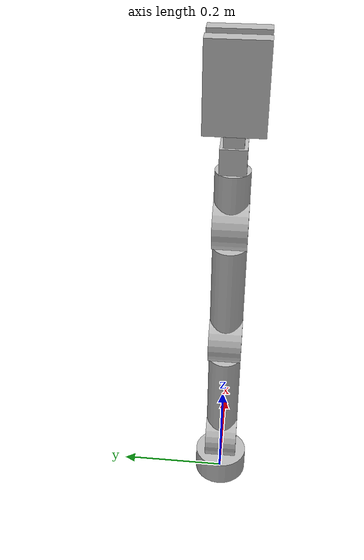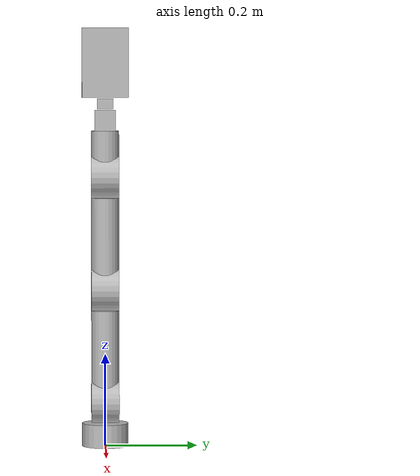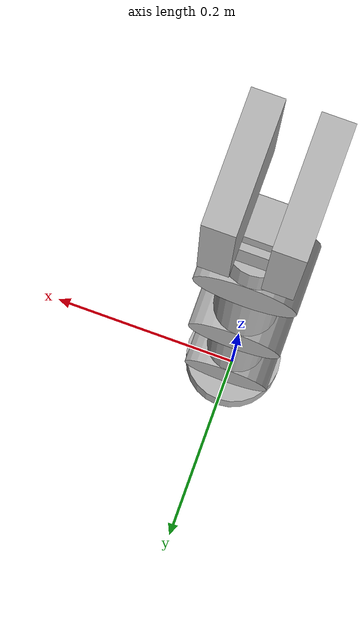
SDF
<sdf version='1.6'>
  <model name='poke_arm_main'>
    <link name='poke_base_link'>
      <pose frame=''>0 0 0 0 -0 0</pose>
      <inertial>
        <pose frame=''>0 0 0.025 0 -0 0</pose>
        <mass>0.01</mass>
        <inertia>
          <ixx>0.0001</ixx>
          <ixy>0</ixy>
          <ixz>0</ixz>
          <iyy>0.0001</iyy>
          <iyz>0</iyz>
          <izz>0.0001</izz>
        </inertia>
      </inertial>
      <collision name='poke_base_link_fixed_joint_lump__baseMount_link_collision'>
        <pose frame=''>0 0 0.025 0 -0 0</pose>
        <geometry>
          <cylinder>
            <length>0.05</length>
            <radius>0.05</radius>
          </cylinder>
        </geometry>
      </collision>
      <visual name='poke_base_link_fixed_joint_lump__baseMount_link_visual'>
        <pose frame=''>0 0 0.025 0 -0 0</pose>
        <geometry>
          <cylinder>
            <length>0.05</length>
            <radius>0.05</radius>
          </cylinder>
        </geometry>
      </visual>
    </link>
    <joint name='poke_base_joint' type='fixed'>
      <child>poke_base_link</child>
      <parent>world</parent>
    </joint>
    <link name='p0_link'>
      <pose frame=''>0 0 0.095 0 -0 0</pose>
      <inertial>
        <pose frame=''>0 0 0.1 0 -0 0</pose>
        <mass>0.01</mass>
        <inertia>
          <ixx>0.0001</ixx>
          <ixy>0</ixy>
          <ixz>0</ixz>
          <iyy>0.0001</iyy>
          <iyz>0</iyz>
          <izz>0.0001</izz>
        </inertia>
      </inertial>
      <collision name='p0_link_fixed_joint_lump__p0_joint_c_collision'>
        <pose frame=''>0 0 0 1.57079 -0 0</pose>
        <geometry>
          <cylinder>
            <length>0.06</length>
            <radius>0.045</radius>
          </cylinder>
        </geometry>
      </collision>
      <collision name='p0_link_fixed_joint_lump__p0_segmentL_c_collision_1'>
        <pose frame=''>0 0 0.1 0 -0 0</pose>
        <geometry>
          <cylinder>
            <length>0.2</length>
            <radius>0.03</radius>
          </cylinder>
        </geometry>
      </collision>
      <visual name='p0_link_fixed_joint_lump__p0_joint_v_visual'>
        <pose frame=''>0 0 0 1.57079 -0 0</pose>
        <geometry>
          <cylinder>
            <length>0.06</length>
            <radius>0.045</radius>
          </cylinder>
        </geometry>
      </visual>
      <visual name='p0_link_fixed_joint_lump__p0_segmentL_v_visual_1'>
        <pose frame=''>0 0 0.1 0 -0 0</pose>
        <geometry>
          <cylinder>
            <length>0.2</length>
            <radius>0.03</radius>
          </cylinder>
        </geometry>
      </visual>
    </link>
    <joint name='p0_joint' type='revolute'>
      <child>p0_link</child>
      <parent>poke_base_link</parent>
      <axis>
        <xyz>0 1 0</xyz>
        <limit>
          <lower>-3.14159</lower>
          <upper>3.14159</upper>
          <effort>100</effort>
          <velocity>5</velocity>
        </limit>
        <dynamics>
          <spring_reference>0</spring_reference>
          <spring_stiffness>0</spring_stiffness>
        </dynamics>
        <use_parent_model_frame>1</use_parent_model_frame>
      </axis>
    </joint>
    <link name='p1_link'>
      <pose frame=''>0 0 0.34 0 -0 0</pose>
      <inertial>
        <pose frame=''>0 0 0.1 0 -0 0</pose>
        <mass>0.01</mass>
        <inertia>
          <ixx>0.0001</ixx>
          <ixy>0</ixy>
          <ixz>0</ixz>
          <iyy>0.0001</iyy>
          <iyz>0</iyz>
          <izz>0.0001</izz>
        </inertia>
      </inertial>
      <collision name='p1_link_fixed_joint_lump__p1_joint_c_collision'>
        <pose frame=''>0 0 0 1.57079 -0 0</pose>
        <geometry>
          <cylinder>
            <length>0.06</length>
            <radius>0.045</radius>
          </cylinder>
        </geometry>
      </collision>
      <collision name='p1_link_fixed_joint_lump__p1_segmentL_c_collision_1'>
        <pose frame=''>0 0 0.1 0 -0 0</pose>
        <geometry>
          <cylinder>
            <length>0.2</length>
            <radius>0.03</radius>
          </cylinder>
        </geometry>
      </collision>
      <visual name='p1_link_fixed_joint_lump__p1_joint_v_visual'>
        <pose frame=''>0 0 0 1.57079 -0 0</pose>
        <geometry>
          <cylinder>
            <length>0.06</length>
            <radius>0.045</radius>
          </cylinder>
        </geometry>
      </visual>
      <visual name='p1_link_fixed_joint_lump__p1_segmentL_v_visual_1'>
        <pose frame=''>0 0 0.1 0 -0 0</pose>
        <geometry>
          <cylinder>
            <length>0.2</length>
            <radius>0.03</radius>
          </cylinder>
        </geometry>
      </visual>
    </link>
    <joint name='p1_joint' type='revolute'>
      <child>p1_link</child>
      <parent>p0_link</parent>
      <axis>
        <xyz>0 1 0</xyz>
        <limit>
          <lower>-3.14159</lower>
          <upper>3.14159</upper>
          <effort>100</effort>
          <velocity>5</velocity>
        </limit>
        <dynamics>
          <spring_reference>0</spring_reference>
          <spring_stiffness>0</spring_stiffness>
        </dynamics>
        <use_parent_model_frame>1</use_parent_model_frame>
      </axis>
    </joint>
    <link name='p2_link'>
      <pose frame=''>0 0 0.585 0 -0 0</pose>
      <inertial>
        <pose frame=''>0 0 0.05 0 -0 0</pose>
        <mass>0.01</mass>
        <inertia>
          <ixx>0.0001</ixx>
          <ixy>0</ixy>
          <ixz>0</ixz>
          <iyy>0.0001</iyy>
          <iyz>0</iyz>
          <izz>0.0001</izz>
        </inertia>
      </inertial>
      <collision name='p2_link_fixed_joint_lump__p2_joint_c_collision'>
        <pose frame=''>0 0 0 1.57079 -0 0</pose>
        <geometry>
          <cylinder>
            <length>0.06</length>
            <radius>0.045</radius>
          </cylinder>
        </geometry>
      </collision>
      <collision name='p2_link_fixed_joint_lump__p2_segmentS_c_collision_1'>
        <pose frame=''>0 0 0.05 0 -0 0</pose>
        <geometry>
          <cylinder>
            <length>0.1</length>
            <radius>0.03</radius>
          </cylinder>
        </geometry>
      </collision>
      <visual name='p2_link_fixed_joint_lump__p2_joint_v_visual'>
        <pose frame=''>0 0 0 1.57079 -0 0</pose>
        <geometry>
          <cylinder>
            <length>0.06</length>
            <radius>0.045</radius>
          </cylinder>
        </geometry>
      </visual>
      <visual name='p2_link_fixed_joint_lump__p2_segmentS_v_visual_1'>
        <pose frame=''>0 0 0.05 0 -0 0</pose>
        <geometry>
          <cylinder>
            <length>0.1</length>
            <radius>0.03</radius>
          </cylinder>
        </geometry>
      </visual>
    </link>
    <joint name='p2_joint' type='revolute'>
      <child>p2_link</child>
      <parent>p1_link</parent>
      <axis>
        <xyz>0 1 0</xyz>
        <limit>
          <lower>-3.14159</lower>
          <upper>3.14159</upper>
          <effort>100</effort>
          <velocity>5</velocity>
        </limit>
        <dynamics>
          <spring_reference>0</spring_reference>
          <spring_stiffness>0</spring_stiffness>
        </dynamics>
        <use_parent_model_frame>1</use_parent_model_frame>
      </axis>
    </joint>
    <link name='p3_link'>
      <pose frame=''>0 0 0.7075 0 -0 0</pose>
      <inertial>
        <pose frame=''>0 0 0.018 0 -0 0</pose>
        <mass>0.02</mass>
        <inertia>
          <ixx>0.00010748</ixx>
          <ixy>0</ixy>
          <ixz>0</ixz>
          <iyy>0.00010748</iyy>
          <iyz>0</iyz>
          <izz>0.000101</izz>
        </inertia>
      </inertial>
      <collision name='p3_link_fixed_joint_lump__p3_cSeg_c_collision'>
        <pose frame=''>0 0 0 0 -0 0</pose>
        <geometry>
          <box>
            <size>0.045 0.045 0.045</size>
          </box>
        </geometry>
      </collision>
      <collision name='p3_link_fixed_joint_lump__gripper_frame_cp_collision_1'>
        <pose frame=''>0 0 0.036 3.14159 -1.57079 3.14159</pose>
        <geometry>
          <box>
            <size>0.0225 0.03375 0.045</size>
          </box>
        </geometry>
      </collision>
      <visual name='p3_link_fixed_joint_lump__p3_cSeg_v_visual'>
        <pose frame=''>0 0 0 0 -0 0</pose>
        <geometry>
          <box>
            <size>0.045 0.045 0.045</size>
          </box>
        </geometry>
      </visual>
      <visual name='p3_link_fixed_joint_lump__gripper_frame_cp_visual_1'>
        <pose frame=''>0 0 0.036 3.14159 -1.57079 3.14159</pose>
        <geometry>
          <box>
            <size>0.0225 0.03375 0.045</size>
          </box>
        </geometry>
      </visual>
    </link>
    <joint name='p3_joint' type='revolute'>
      <child>p3_link</child>
      <parent>p2_link</parent>
      <axis>
        <xyz>0 0 1</xyz>
        <limit>
          <lower>-1e+16</lower>
          <upper>1e+16</upper>
        </limit>
        <dynamics>
          <spring_reference>0</spring_reference>
          <spring_stiffness>0</spring_stiffness>
        </dynamics>
        <use_parent_model_frame>1</use_parent_model_frame>
      </axis>
    </joint>
    <link name='gripper_link_1'>
      <pose frame=''>0 0 0.8075 0 -0 0</pose>
      <inertial>
        <pose frame=''>0 0 0.075 0 -0 0</pose>
        <mass>0.2</mass>
        <inertia>
          <ixx>0.000541667</ixx>
          <ixy>0</ixy>
          <ixz>0</ixz>
          <iyy>0.000541667</iyy>
          <iyz>0</iyz>
          <izz>0.000333333</izz>
        </inertia>
      </inertial>
      <collision name='gripper_link_1_collision_collision'>
        <pose frame=''>0.025 0 0.025 0 -0 0</pose>
        <geometry>
          <box>
            <size>0.025 0.1 0.15</size>
          </box>
        </geometry>
        <surface>
          <contact>
            <ode/>
          </contact>
          <friction>
            <ode/>
          </friction>
        </surface>
      </collision>
      <visual name='gripper_link_1_visual'>
        <pose frame=''>0.025 0 0.025 0 -0 0</pose>
        <geometry>
          <box>
            <size>0.025 0.1 0.15</size>
          </box>
        </geometry>
        <material>
          <script>
            <uri>__default__</uri>
            <name>__default__</name>
          </script>
        </material>
      </visual>
      <gravity>1</gravity>
      <velocity_decay/>
      <sensor name='gripper_1_sensor' type='contact'>
        <plugin name='gripper_1_sensor' filename='libgazebo_ros_bumper.so'>
          <bumperTopicName>gripper_1_vals</bumperTopicName>
          <frameName>world</frameName>
          <alwayson>1</alwayson>
          <updaterate>100.0</updaterate>
        </plugin>
        <always_on>1</always_on>
        <update_rate>1000</update_rate>
        <contact>
          <collision>gripper_link_1_collision_collision</collision>
          <topic>__default_topic__</topic>
        </contact>
      </sensor>
    </link>
    <joint name='gripper_1' type='prismatic'>
      <child>gripper_link_1</child>
      <parent>p3_link</parent>
      <axis>
        <xyz>1 0 0</xyz>
        <limit>
          <lower>0.025</lower>
          <upper>0.5</upper>
          <effort>30</effort>
          <velocity>1</velocity>
        </limit>
        <dynamics>
          <spring_reference>0</spring_reference>
          <spring_stiffness>0</spring_stiffness>
        </dynamics>
        <use_parent_model_frame>1</use_parent_model_frame>
      </axis>
    </joint>
    <link name='gripper_link_2'>
      <pose frame=''>0 0 0.8075 0 -0 0</pose>
      <inertial>
        <pose frame=''>0 0 0.075 0 -0 0</pose>
        <mass>0.2</mass>
        <inertia>
          <ixx>0.000541667</ixx>
          <ixy>0</ixy>
          <ixz>0</ixz>
          <iyy>0.000541667</iyy>
          <iyz>0</iyz>
          <izz>0.000333333</izz>
        </inertia>
      </inertial>
      <collision name='gripper_link_2_collision_collision'>
        <pose frame=''>-0.025 0 0.025 0 -0 0</pose>
        <geometry>
          <box>
            <size>0.025 0.1 0.15</size>
          </box>
        </geometry>
        <surface>
          <contact>
            <ode/>
          </contact>
          <friction>
            <ode/>
          </friction>
        </surface>
      </collision>
      <visual name='gripper_link_2_visual'>
        <pose frame=''>-0.025 0 0.025 0 -0 0</pose>
        <geometry>
          <box>
            <size>0.025 0.1 0.15</size>
          </box>
        </geometry>
        <material>
          <script>
            <uri>__default__</uri>
            <name>__default__</name>
          </script>
        </material>
      </visual>
      <gravity>1</gravity>
      <velocity_decay/>
      <sensor name='gripper_2_sensor' type='contact'>
        <plugin name='gripper_2_sensor' filename='libgazebo_ros_bumper.so'>
          <bumperTopicName>gripper_2_vals</bumperTopicName>
          <frameName>world</frameName>
          <alwayson>1</alwayson>
          <updaterate>100.0</updaterate>
        </plugin>
        <always_on>1</always_on>
        <update_rate>1000</update_rate>
        <contact>
          <collision>gripper_link_2_collision_collision</collision>
          <topic>__default_topic__</topic>
        </contact>
      </sensor>
    </link>
    <joint name='gripper_2' type='prismatic'>
      <child>gripper_link_2</child>
      <parent>p3_link</parent>
      <axis>
        <xyz>1 0 0</xyz>
        <limit>
          <lower>-0.5</lower>
          <upper>-0.025</upper>
          <effort>30</effort>
          <velocity>1</velocity>
        </limit>
        <dynamics>
          <spring_reference>0</spring_reference>
          <spring_stiffness>0</spring_stiffness>
        </dynamics>
        <use_parent_model_frame>1</use_parent_model_frame>
      </axis>
    </joint>
    <plugin name='gazebo_ros_control' filename='libgazebo_ros_control.so'>
      <robotSimType>gazebo_ros_control/DefaultRobotHWSim</robotSimType>
      <robotNamespace>/</robotNamespace>
    </plugin>
    <static>0</static>
    <plugin name='joint_state_publisher' filename='libgazebo_ros_joint_state_publisher.so'>
      <jointName>p0_joint, p1_joint, p2_joint, p3_joint, gripper_1, gripper_2</jointName>
    </plugin>
  </model>
</sdf>
